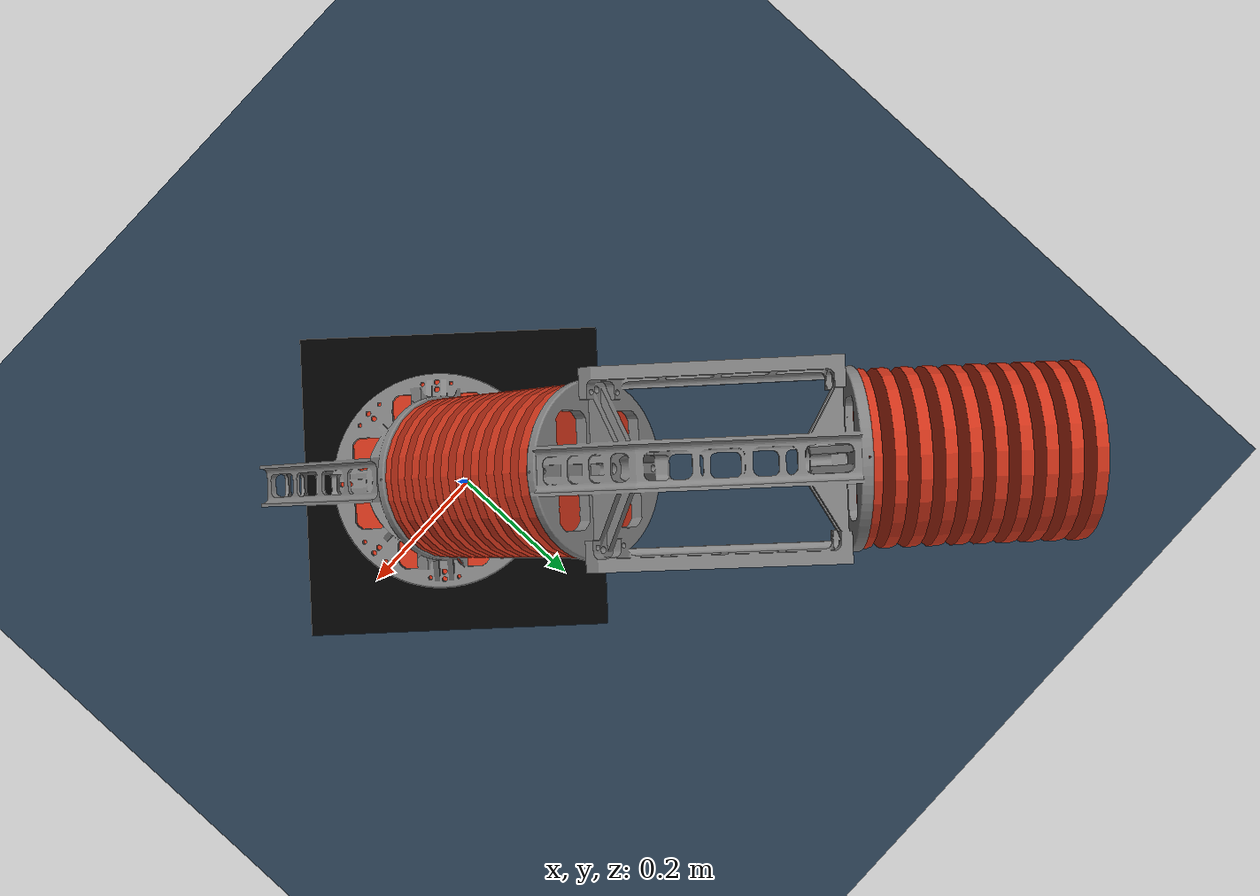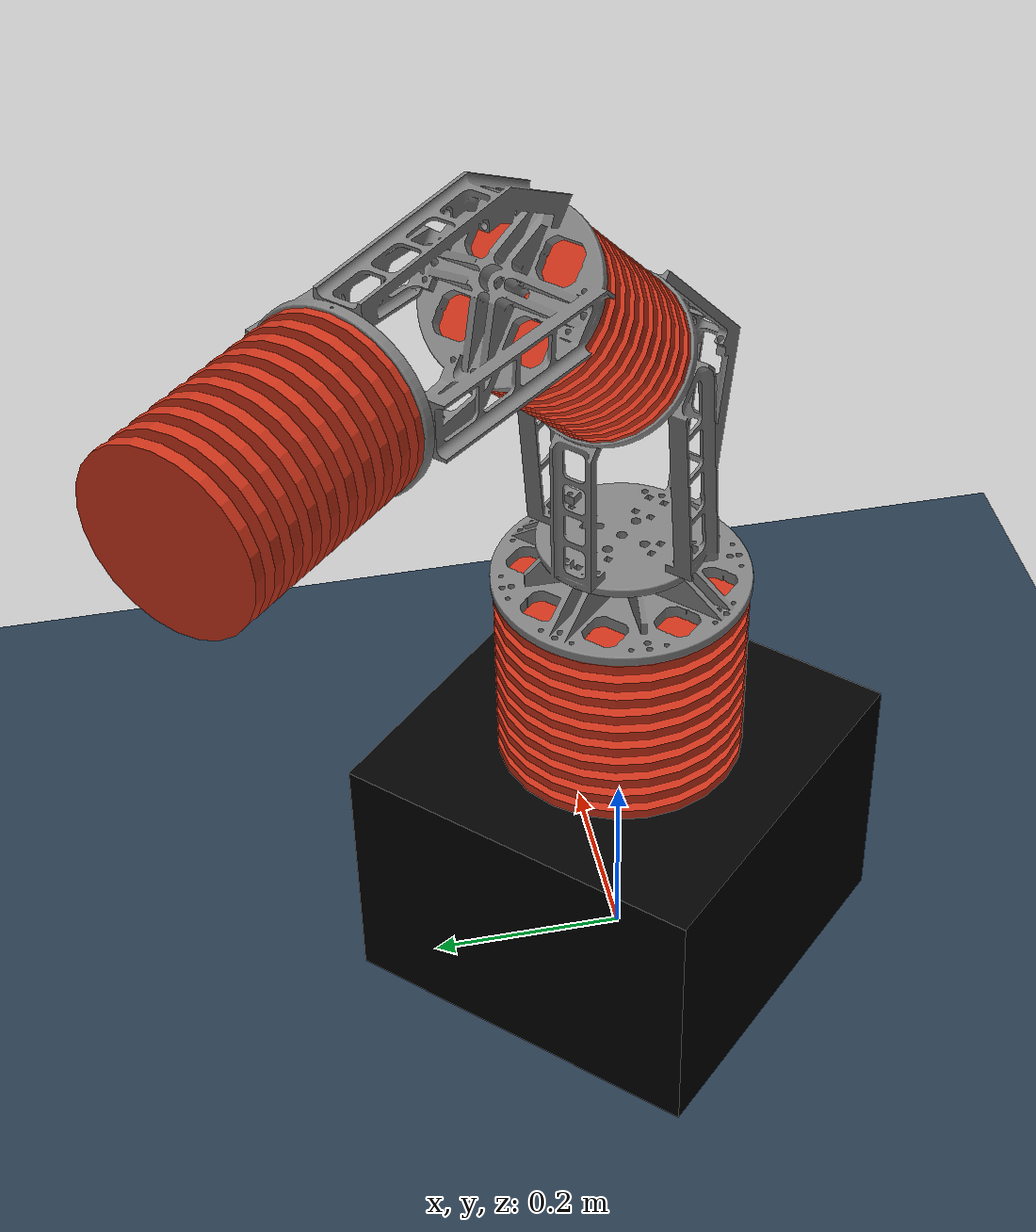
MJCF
<mujoco model="bellows_arm">
  <compiler angle="degree"/>
  <option timestep="0.001" cone="elliptic" jacobian="sparse" solver="Newton" iterations="50" tolerance="1e-10">
    <flag gravity="enable"/>
  </option>
  <size njmax="5000" nconmax="5000" nstack="5000000"/>
  <visual>
    <quality shadowsize="2048"/>
    <map stiffness="7015" fogstart="10" fogend="15" zfar="40" shadowscale="0.5"/>
    <rgba haze="0.14999999999999999 0.25 0.34999999999999998 1"/>
  </visual>
  <default>
    <default class="/">
      <default class="8bellows">
        <joint group="3" type="hinge" pos="0 0 0.010526315789473684" limited="true" stiffness="1360" range="-0.087266462599716474 0.087266462599716474" damping="75"/>
        <geom type="cylinder" size="0.125 0.005263157894736842" rgba="0.80000000000000004 0.20000000000000001 0.10000000000000001 1"/>
      </default>
      <default class="4bellows">
        <joint group="3" type="hinge" pos="0 0 0.010526315789473684" limited="true" stiffness="270" range="-0.15707963267948966 0.15707963267948966" damping="20"/>
        <geom type="cylinder" size="0.080000000000000002 0.005263157894736842" rgba="0.80000000000000004 0.20000000000000001 0.10000000000000001 1"/>
      </default>
    </default>
  </default>
  <asset>
    <texture name="texplane" type="2d" builtin="checker" rgb1="0.20000000000000001 0.29999999999999999 0.4000000000000002" rgb2="0.10000000000000001 0.14999999999999999 0.20000000000000001" mark="cross" markrgb="0.80000000000000004 0.80000000000000004 0.80000000000000004" width="512" height="512"/>
    <material name="matplane" class="/" texture="texplane" texuniform="true" reflectance="0.29999999999999999"/>
    <mesh name="link0" class="/" file="link0.stl"/>
    <mesh name="link1" class="/" file="link1.stl"/>
  </asset>
  <worldbody>
    <geom name="world" class="/" type="plane" condim="1" size="0 0 1" material="matplane"/>
    <light name="//unnamed_light_0" class="/" directional="true" pos="0 0 4" dir="0 0 -1" diffuse="0.59999999999999998 0.59999999999999998 0.59999999999999998" specular="0.20000000000000001 0.20000000000000001 0.20000000000000001"/>
    <body name="base" pos="0 0 0.1400000000000001" euler="0 0 45">
      <geom name="base" class="/" type="box" size="0.19685 0.19685 0.1400000000000001" rgba="0 0 0 1" pos="0 0 0"/>
      <inertial pos="0 0 0" mass="0.013599999999999999" diaginertia="0.0008497 0.0008497 0.0016992000000000001"/>
      <body name="0_B0" childclass="8bellows" pos="0 0 0.14526315789473684" euler="0 0 -45">
        <geom name="0_G0"/>
        <inertial pos="0 0 0" mass="0.26529999999999998" diaginertia="0.0010387778018236379 0.0010387778018236379 0.0020726562499999998"/>
        <site name="0_bottom" pos="0 0 0"/>
        <body name="0_B1" pos="0 0 0.021052631578947368">
          <geom name="0_G1"/>
          <inertial pos="0 0 0" mass="0.26529999999999998" diaginertia="0.0010387778018236379 0.0010387778018236379 0.0020726562499999998"/>
          <joint name="0_Jx_1" axis="1 0 0"/>
          <joint name="0_Jy_1" axis="0 1 0"/>
          <body name="0_B2" pos="0 0 0.021052631578947368">
            <geom name="0_G2"/>
            <inertial pos="0 0 0" mass="0.26529999999999998" diaginertia="0.0010387778018236379 0.0010387778018236379 0.0020726562499999998"/>
            <joint name="0_Jx_2" axis="1 0 0"/>
            <joint name="0_Jy_2" axis="0 1 0"/>
            <body name="0_B3" pos="0 0 0.021052631578947368">
              <geom name="0_G3"/>
              <inertial pos="0 0 0" mass="0.26529999999999998" diaginertia="0.0010387778018236379 0.0010387778018236379 0.0020726562499999998"/>
              <joint name="0_Jx_3" axis="1 0 0"/>
              <joint name="0_Jy_3" axis="0 1 0"/>
              <body name="0_B4" pos="0 0 0.021052631578947368">
                <geom name="0_G4"/>
                <inertial pos="0 0 0" mass="0.26529999999999998" diaginertia="0.0010387778018236379 0.0010387778018236379 0.0020726562499999998"/>
                <joint name="0_Jx_4" axis="1 0 0"/>
                <joint name="0_Jy_4" axis="0 1 0"/>
                <body name="0_B5" pos="0 0 0.021052631578947368">
                  <geom name="0_G5"/>
                  <inertial pos="0 0 0" mass="0.26529999999999998" diaginertia="0.0010387778018236379 0.0010387778018236379 0.0020726562499999998"/>
                  <joint name="0_Jx_5" axis="1 0 0"/>
                  <joint name="0_Jy_5" axis="0 1 0"/>
                  <body name="0_B6" pos="0 0 0.021052631578947368">
                    <geom name="0_G6"/>
                    <inertial pos="0 0 0" mass="0.26529999999999998" diaginertia="0.0010387778018236379 0.0010387778018236379 0.0020726562499999998"/>
                    <joint name="0_Jx_6" axis="1 0 0"/>
                    <joint name="0_Jy_6" axis="0 1 0"/>
                    <body name="0_B7" pos="0 0 0.021052631578947368">
                      <geom name="0_G7"/>
                      <inertial pos="0 0 0" mass="0.26529999999999998" diaginertia="0.0010387778018236379 0.0010387778018236379 0.0020726562499999998"/>
                      <joint name="0_Jx_7" axis="1 0 0"/>
                      <joint name="0_Jy_7" axis="0 1 0"/>
                      <body name="0_B8" pos="0 0 0.021052631578947368">
                        <geom name="0_G8"/>
                        <inertial pos="0 0 0" mass="0.26529999999999998" diaginertia="0.0010387778018236379 0.0010387778018236379 0.0020726562499999998"/>
                        <joint name="0_Jx_8" axis="1 0 0"/>
                        <joint name="0_Jy_8" axis="0 1 0"/>
                        <body name="0_B9" pos="0 0 0.021052631578947368">
                          <geom name="0_G9"/>
                          <inertial pos="0 0 0" mass="0.26529999999999998" diaginertia="0.0010387778018236379 0.0010387778018236379 0.0020726562499999998"/>
                          <joint name="0_Jx_9" axis="1 0 0"/>
                          <joint name="0_Jy_9" axis="0 1 0"/>
                          <body name="link0" pos="0 0 0.005263157894736842">
                            <inertial pos="0 0 0.115" mass="3.8809999999999998" diaginertia="0.108 0.108 0.023"/>
                            <geom name="link0" type="mesh" rgba="0.5 0.5 0.5 1" mesh="link0"/>
                            <body name="1_B0" childclass="4bellows" pos="-0.0223 0.0223 0.28199999999999997" axisangle="1 1 0 -45">
                              <geom name="1_G0"/>
                              <inertial pos="0 0 0" mass="0.1326" diaginertia="0.00021338437673130195 0.00021338437673130195 0.00042432"/>
                              <site name="1_bottom" pos="0 0 0"/>
                              <body name="1_B1" pos="0 0 0.021052631578947368">
                                <geom name="1_G1"/>
                                <inertial pos="0 0 0" mass="0.1326" diaginertia="0.00021338437673130195 0.00021338437673130195 0.00042432"/>
                                <joint name="1_Jx_1" axis="1 0 0"/>
                                <joint name="1_Jy_1" axis="0 1 0"/>
                                <body name="1_B2" pos="0 0 0.021052631578947368">
                                  <geom name="1_G2"/>
                                  <inertial pos="0 0 0" mass="0.1326" diaginertia="0.00021338437673130195 0.00021338437673130195 0.00042432"/>
                                  <joint name="1_Jx_2" axis="1 0 0"/>
                                  <joint name="1_Jy_2" axis="0 1 0"/>
                                  <body name="1_B3" pos="0 0 0.021052631578947368">
                                    <geom name="1_G3"/>
                                    <inertial pos="0 0 0" mass="0.1326" diaginertia="0.00021338437673130195 0.00021338437673130195 0.00042432"/>
                                    <joint name="1_Jx_3" axis="1 0 0"/>
                                    <joint name="1_Jy_3" axis="0 1 0"/>
                                    <body name="1_B4" pos="0 0 0.021052631578947368">
                                      <geom name="1_G4"/>
                                      <inertial pos="0 0 0" mass="0.1326" diaginertia="0.00021338437673130195 0.00021338437673130195 0.00042432"/>
                                      <joint name="1_Jx_4" axis="1 0 0"/>
                                      <joint name="1_Jy_4" axis="0 1 0"/>
                                      <body name="1_B5" pos="0 0 0.021052631578947368">
                                        <geom name="1_G5"/>
                                        <inertial pos="0 0 0" mass="0.1326" diaginertia="0.00021338437673130195 0.00021338437673130195 0.00042432"/>
                                        <joint name="1_Jx_5" axis="1 0 0"/>
                                        <joint name="1_Jy_5" axis="0 1 0"/>
                                        <body name="1_B6" pos="0 0 0.021052631578947368">
                                          <geom name="1_G6"/>
                                          <inertial pos="0 0 0" mass="0.1326" diaginertia="0.00021338437673130195 0.00021338437673130195 0.00042432"/>
                                          <joint name="1_Jx_6" axis="1 0 0"/>
                                          <joint name="1_Jy_6" axis="0 1 0"/>
                                          <body name="1_B7" pos="0 0 0.021052631578947368">
                                            <geom name="1_G7"/>
                                            <inertial pos="0 0 0" mass="0.1326" diaginertia="0.00021338437673130195 0.00021338437673130195 0.00042432"/>
                                            <joint name="1_Jx_7" axis="1 0 0"/>
                                            <joint name="1_Jy_7" axis="0 1 0"/>
                                            <body name="1_B8" pos="0 0 0.021052631578947368">
                                              <geom name="1_G8"/>
                                              <inertial pos="0 0 0" mass="0.1326" diaginertia="0.00021338437673130195 0.00021338437673130195 0.00042432"/>
                                              <joint name="1_Jx_8" axis="1 0 0"/>
                                              <joint name="1_Jy_8" axis="0 1 0"/>
                                              <body name="1_B9" pos="0 0 0.021052631578947368">
                                                <geom name="1_G9"/>
                                                <inertial pos="0 0 0" mass="0.1326" diaginertia="0.00021338437673130195 0.00021338437673130195 0.00042432"/>
                                                <joint name="1_Jx_9" axis="1 0 0"/>
                                                <joint name="1_Jy_9" axis="0 1 0"/>
                                                <body name="link1" pos="0 0 0.005263157894736842">
                                                  <inertial pos="-0.070000000000000007 0.070000000000000007 0.13" mass="3.474000000000002" diaginertia="0.050000000000000003 0.050000000000000003 0.017000000000000001"/>
                                                  <geom name="link1" type="mesh" rgba="0.5 0.5 0.5 1" mesh="link1"/>
                                                  <body name="2_B0" childclass="4bellows" pos="-0.10299999999999999 0.10299999999999999 0.19" axisangle="1 1 0 -45">
                                                    <geom name="2_G0"/>
                                                    <inertial pos="0 0 0" mass="0.1326" diaginertia="0.00021338437673130195 0.00021338437673130195 0.00042432"/>
                                                    <site name="2_bottom" pos="0 0 0"/>
                                                    <body name="2_B1" pos="0 0 0.021052631578947368">
                                                      <geom name="2_G1"/>
                                                      <inertial pos="0 0 0" mass="0.1326" diaginertia="0.00021338437673130195 0.00021338437673130195 0.00042432"/>
                                                      <joint name="2_Jx_1" axis="1 0 0"/>
                                                      <joint name="2_Jy_1" axis="0 1 0"/>
                                                      <body name="2_B2" pos="0 0 0.021052631578947368">
                                                        <geom name="2_G2"/>
                                                        <inertial pos="0 0 0" mass="0.1326" diaginertia="0.00021338437673130195 0.00021338437673130195 0.00042432"/>
                                                        <joint name="2_Jx_2" axis="1 0 0"/>
                                                        <joint name="2_Jy_2" axis="0 1 0"/>
                                                        <body name="2_B3" pos="0 0 0.021052631578947368">
                                                          <geom name="2_G3"/>
                                                          <inertial pos="0 0 0" mass="0.1326" diaginertia="0.00021338437673130195 0.00021338437673130195 0.00042432"/>
                                                          <joint name="2_Jx_3" axis="1 0 0"/>
                                                          <joint name="2_Jy_3" axis="0 1 0"/>
                                                          <body name="2_B4" pos="0 0 0.021052631578947368">
                                                            <geom name="2_G4"/>
                                                            <inertial pos="0 0 0" mass="0.1326" diaginertia="0.00021338437673130195 0.00021338437673130195 0.00042432"/>
                                                            <joint name="2_Jx_4" axis="1 0 0"/>
                                                            <joint name="2_Jy_4" axis="0 1 0"/>
                                                            <body name="2_B5" pos="0 0 0.021052631578947368">
                                                            <geom name="2_G5"/>
                                                            <inertial pos="0 0 0" mass="0.1326" diaginertia="0.00021338437673130195 0.00021338437673130195 0.00042432"/>
                                                            <joint name="2_Jx_5" axis="1 0 0"/>
                                                            <joint name="2_Jy_5" axis="0 1 0"/>
                                                            <body name="2_B6" pos="0 0 0.021052631578947368">
                                                            <geom name="2_G6"/>
                                                            <inertial pos="0 0 0" mass="0.1326" diaginertia="0.00021338437673130195 0.00021338437673130195 0.00042432"/>
                                                            <joint name="2_Jx_6" axis="1 0 0"/>
                                                            <joint name="2_Jy_6" axis="0 1 0"/>
                                                            <body name="2_B7" pos="0 0 0.021052631578947368">
                                                            <geom name="2_G7"/>
                                                            <inertial pos="0 0 0" mass="0.1326" diaginertia="0.00021338437673130195 0.00021338437673130195 0.00042432"/>
                                                            <joint name="2_Jx_7" axis="1 0 0"/>
                                                            <joint name="2_Jy_7" axis="0 1 0"/>
                                                            <body name="2_B8" pos="0 0 0.021052631578947368">
                                                            <geom name="2_G8"/>
                                                            <inertial pos="0 0 0" mass="0.1326" diaginertia="0.00021338437673130195 0.00021338437673130195 0.00042432"/>
                                                            <joint name="2_Jx_8" axis="1 0 0"/>
                                                            <joint name="2_Jy_8" axis="0 1 0"/>
                                                            <body name="2_B9" pos="0 0 0.021052631578947368">
                                                            <geom name="2_G9"/>
                                                            <inertial pos="0 0 0" mass="0.1326" diaginertia="0.00021338437673130195 0.00021338437673130195 0.00042432"/>
                                                            <joint name="2_Jx_9" axis="1 0 0"/>
                                                            <joint name="2_Jy_9" axis="0 1 0"/>
                                                            </body>
                                                            </body>
                                                            </body>
                                                            </body>
                                                            </body>
                                                          </body>
                                                        </body>
                                                      </body>
                                                    </body>
                                                  </body>
                                                </body>
                                              </body>
                                            </body>
                                          </body>
                                        </body>
                                      </body>
                                    </body>
                                  </body>
                                </body>
                              </body>
                            </body>
                          </body>
                        </body>
                      </body>
                    </body>
                  </body>
                </body>
              </body>
            </body>
          </body>
        </body>
      </body>
    </body>
  </worldbody>
  <tendon>
    <fixed name="x0" class="/">
      <joint joint="0_Jx_1" coef="1"/>
      <joint joint="0_Jx_2" coef="1"/>
      <joint joint="0_Jx_3" coef="1"/>
      <joint joint="0_Jx_4" coef="1"/>
      <joint joint="0_Jx_5" coef="1"/>
      <joint joint="0_Jx_6" coef="1"/>
      <joint joint="0_Jx_7" coef="1"/>
      <joint joint="0_Jx_8" coef="1"/>
      <joint joint="0_Jx_9" coef="1"/>
    </fixed>
    <fixed name="y0" class="/">
      <joint joint="0_Jy_1" coef="1"/>
      <joint joint="0_Jy_2" coef="1"/>
      <joint joint="0_Jy_3" coef="1"/>
      <joint joint="0_Jy_4" coef="1"/>
      <joint joint="0_Jy_5" coef="1"/>
      <joint joint="0_Jy_6" coef="1"/>
      <joint joint="0_Jy_7" coef="1"/>
      <joint joint="0_Jy_8" coef="1"/>
      <joint joint="0_Jy_9" coef="1"/>
    </fixed>
    <fixed name="x1" class="/">
      <joint joint="1_Jx_1" coef="1"/>
      <joint joint="1_Jx_2" coef="1"/>
      <joint joint="1_Jx_3" coef="1"/>
      <joint joint="1_Jx_4" coef="1"/>
      <joint joint="1_Jx_5" coef="1"/>
      <joint joint="1_Jx_6" coef="1"/>
      <joint joint="1_Jx_7" coef="1"/>
      <joint joint="1_Jx_8" coef="1"/>
      <joint joint="1_Jx_9" coef="1"/>
    </fixed>
    <fixed name="y1" class="/">
      <joint joint="1_Jy_1" coef="1"/>
      <joint joint="1_Jy_2" coef="1"/>
      <joint joint="1_Jy_3" coef="1"/>
      <joint joint="1_Jy_4" coef="1"/>
      <joint joint="1_Jy_5" coef="1"/>
      <joint joint="1_Jy_6" coef="1"/>
      <joint joint="1_Jy_7" coef="1"/>
      <joint joint="1_Jy_8" coef="1"/>
      <joint joint="1_Jy_9" coef="1"/>
    </fixed>
    <fixed name="x2" class="/">
      <joint joint="2_Jx_1" coef="1"/>
      <joint joint="2_Jx_2" coef="1"/>
      <joint joint="2_Jx_3" coef="1"/>
      <joint joint="2_Jx_4" coef="1"/>
      <joint joint="2_Jx_5" coef="1"/>
      <joint joint="2_Jx_6" coef="1"/>
      <joint joint="2_Jx_7" coef="1"/>
      <joint joint="2_Jx_8" coef="1"/>
      <joint joint="2_Jx_9" coef="1"/>
    </fixed>
    <fixed name="y2" class="/">
      <joint joint="2_Jy_1" coef="1"/>
      <joint joint="2_Jy_2" coef="1"/>
      <joint joint="2_Jy_3" coef="1"/>
      <joint joint="2_Jy_4" coef="1"/>
      <joint joint="2_Jy_5" coef="1"/>
      <joint joint="2_Jy_6" coef="1"/>
      <joint joint="2_Jy_7" coef="1"/>
      <joint joint="2_Jy_8" coef="1"/>
      <joint joint="2_Jy_9" coef="1"/>
    </fixed>
  </tendon>
  <actuator>
    <cylinder name="p0_j0" class="/" ctrllimited="true" ctrlrange="0 400000" gear="0.10000000000000001" tendon="x0" timeconst="0.20000000000000001" diameter="0.070710678118654766"/>
    <cylinder name="p1_j0" class="/" ctrllimited="true" ctrlrange="0 400000" gear="-0.10000000000000001" tendon="x0" timeconst="0.20000000000000001" diameter="0.070710678118654766"/>
    <cylinder name="p2_j0" class="/" ctrllimited="true" ctrlrange="0 400000" gear="0.10000000000000001" tendon="y0" timeconst="0.20000000000000001" diameter="0.070710678118654766"/>
    <cylinder name="p3_j0" class="/" ctrllimited="true" ctrlrange="0 400000" gear="-0.10000000000000001" tendon="y0" timeconst="0.20000000000000001" diameter="0.070710678118654766"/>
    <cylinder name="p0_j1" class="/" ctrllimited="true" ctrlrange="0 400000" gear="0.050000000000000003" tendon="x1" timeconst="0.5" diameter="0.050000000000000003"/>
    <cylinder name="p1_j1" class="/" ctrllimited="true" ctrlrange="0 400000" gear="-0.050000000000000003" tendon="x1" timeconst="0.5" diameter="0.050000000000000003"/>
    <cylinder name="p2_j1" class="/" ctrllimited="true" ctrlrange="0 400000" gear="0.050000000000000003" tendon="y1" timeconst="0.5" diameter="0.050000000000000003"/>
    <cylinder name="p3_j1" class="/" ctrllimited="true" ctrlrange="0 400000" gear="-0.050000000000000003" tendon="y1" timeconst="0.5" diameter="0.050000000000000003"/>
    <cylinder name="p0_j2" class="/" ctrllimited="true" ctrlrange="0 400000" gear="0.050000000000000003" tendon="x2" timeconst="0.80000000000000004" diameter="0.050000000000000003"/>
    <cylinder name="p1_j2" class="/" ctrllimited="true" ctrlrange="0 400000" gear="-0.050000000000000003" tendon="x2" timeconst="0.80000000000000004" diameter="0.050000000000000003"/>
    <cylinder name="p2_j2" class="/" ctrllimited="true" ctrlrange="0 400000" gear="0.050000000000000003" tendon="y2" timeconst="0.80000000000000004" diameter="0.050000000000000003"/>
    <cylinder name="p3_j2" class="/" ctrllimited="true" ctrlrange="0 400000" gear="-0.050000000000000003" tendon="y2" timeconst="0.80000000000000004" diameter="0.050000000000000003"/>
  </actuator>
  <sensor>
    <tendonpos name="u0" tendon="x0"/>
    <tendonpos name="v0" tendon="y0"/>
    <tendonpos name="u1" tendon="x1"/>
    <tendonpos name="v1" tendon="y1"/>
    <tendonpos name="u2" tendon="x2"/>
    <tendonpos name="v2" tendon="y2"/>
    <tendonvel name="ud0" tendon="x0"/>
    <tendonvel name="vd0" tendon="y0"/>
    <tendonvel name="ud1" tendon="x1"/>
    <tendonvel name="vd1" tendon="y1"/>
    <tendonvel name="ud2" tendon="x2"/>
    <tendonvel name="vd2" tendon="y2"/>
  </sensor>
</mujoco>
